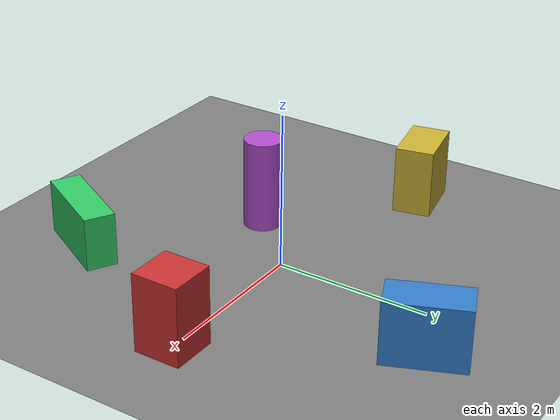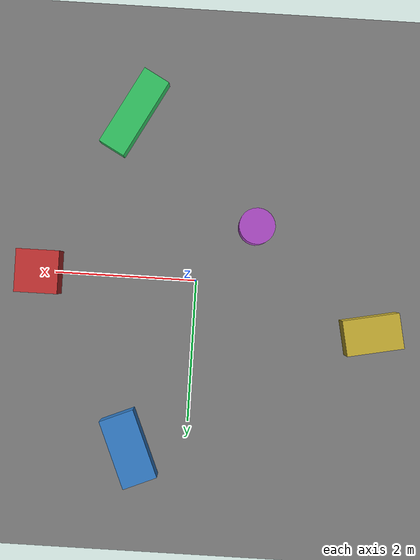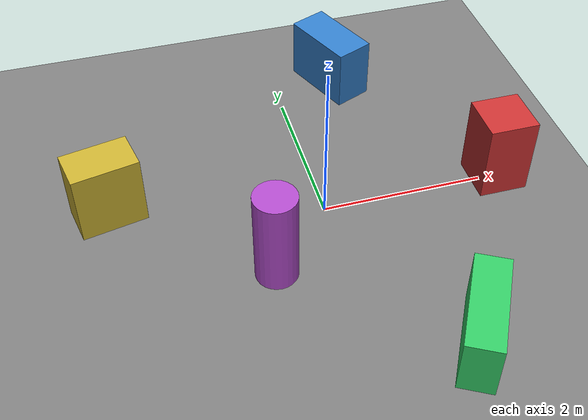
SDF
<?xml version="1.0" ?>
<sdf version="1.9">
  <world name="default">
    <plugin filename="gz-sim-physics-system" name="gz::sim::systems::Physics"/>
    <plugin filename="gz-sim-user-commands-system" name="gz::sim::systems::UserCommands"/>
    <plugin filename="gz-sim-scene-broadcaster-system" name="gz::sim::systems::SceneBroadcaster"/>

    <gravity>0 0 -9.8</gravity>
    <magnetic_field>6e-06 2.3e-05 -4.2e-05</magnetic_field>
    <atmosphere type="adiabatic"/>

    <physics type="ode">
      <max_step_size>0.001</max_step_size>
      <real_time_factor>1.0</real_time_factor>
      <real_time_update_rate>1000</real_time_update_rate>
    </physics>

    <scene>
      <ambient>0.4 0.4 0.4 1</ambient>
      <background>0.7 0.7 0.7 1</background>
      <shadows>true</shadows>
    </scene>

    <light name="sun" type="directional">
      <cast_shadows>true</cast_shadows>
      <pose>0 0 10 0 0 0</pose>
      <diffuse>0.8 0.8 0.8 1</diffuse>
      <specular>0.2 0.2 0.2 1</specular>
      <attenuation>
        <range>1000</range>
        <constant>0.9</constant>
        <linear>0.01</linear>
        <quadratic>0.001</quadratic>
      </attenuation>
      <direction>-0.5 0.1 -0.9</direction>
    </light>

    <model name="ground_plane">
      <static>true</static>
      <link name="link">
        <collision name="collision">
          <geometry>
            <plane>
              <normal>0 0 1</normal>
              <size>100 100</size>
            </plane>
          </geometry>
        </collision>
        <visual name="visual">
          <geometry>
            <plane>
              <normal>0 0 1</normal>
              <size>100 100</size>
            </plane>
          </geometry>
          <material>
            <ambient>0.5 0.5 0.5 1</ambient>
            <diffuse>0.5 0.5 0.5 1</diffuse>
          </material>
        </visual>
      </link>
    </model>

    <model name="front_box">
      <static>true</static>
      <pose>2.2 0.0 0.5 0 0 0</pose>
      <link name="link">
        <collision name="collision">
          <geometry>
            <box>
              <size>0.6 0.6 1.0</size>
            </box>
          </geometry>
        </collision>
        <visual name="visual">
          <geometry>
            <box>
              <size>0.6 0.6 1.0</size>
            </box>
          </geometry>
          <material>
            <ambient>0.8 0.2 0.2 1</ambient>
            <diffuse>0.8 0.2 0.2 1</diffuse>
          </material>
        </visual>
      </link>
    </model>

    <model name="left_box">
      <static>true</static>
      <pose>0.8 2.4 0.4 0 0 0.4</pose>
      <link name="link">
        <collision name="collision">
          <geometry>
            <box>
              <size>0.5 1.0 0.8</size>
            </box>
          </geometry>
        </collision>
        <visual name="visual">
          <geometry>
            <box>
              <size>0.5 1.0 0.8</size>
            </box>
          </geometry>
          <material>
            <ambient>0.2 0.5 0.8 1</ambient>
            <diffuse>0.2 0.5 0.8 1</diffuse>
          </material>
        </visual>
      </link>
    </model>

    <model name="right_box">
      <static>true</static>
      <pose>1.0 -2.3 0.35 0 0 -0.5</pose>
      <link name="link">
        <collision name="collision">
          <geometry>
            <box>
              <size>0.4 1.2 0.7</size>
            </box>
          </geometry>
        </collision>
        <visual name="visual">
          <geometry>
            <box>
              <size>0.4 1.2 0.7</size>
            </box>
          </geometry>
          <material>
            <ambient>0.2 0.8 0.4 1</ambient>
            <diffuse>0.2 0.8 0.4 1</diffuse>
          </material>
        </visual>
      </link>
    </model>

    <model name="rear_box">
      <static>true</static>
      <pose>-2.5 0.6 0.45 0 0 0.2</pose>
      <link name="link">
        <collision name="collision">
          <geometry>
            <box>
              <size>0.8 0.5 0.9</size>
            </box>
          </geometry>
        </collision>
        <visual name="visual">
          <geometry>
            <box>
              <size>0.8 0.5 0.9</size>
            </box>
          </geometry>
          <material>
            <ambient>0.8 0.7 0.2 1</ambient>
            <diffuse>0.8 0.7 0.2 1</diffuse>
          </material>
        </visual>
      </link>
    </model>

    <model name="center_pillar">
      <static>true</static>
      <pose>-0.8 -0.8 0.6 0 0 0</pose>
      <link name="link">
        <collision name="collision">
          <geometry>
            <cylinder>
              <radius>0.25</radius>
              <length>1.2</length>
            </cylinder>
          </geometry>
        </collision>
        <visual name="visual">
          <geometry>
            <cylinder>
              <radius>0.25</radius>
              <length>1.2</length>
            </cylinder>
          </geometry>
          <material>
            <ambient>0.7 0.3 0.8 1</ambient>
            <diffuse>0.7 0.3 0.8 1</diffuse>
          </material>
        </visual>
      </link>
    </model>
  </world>
</sdf>
